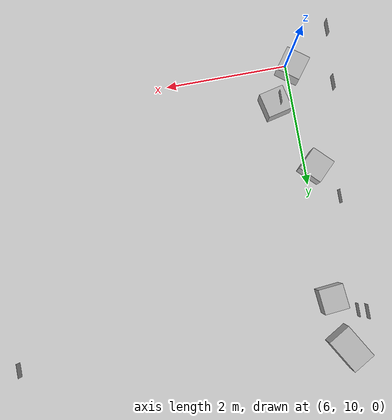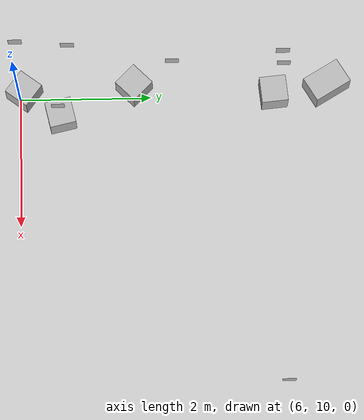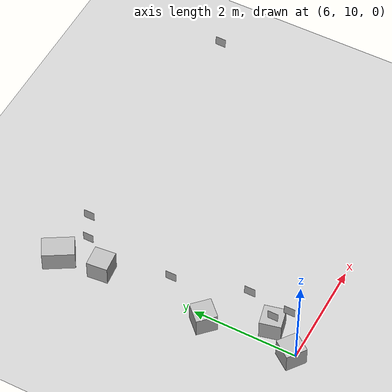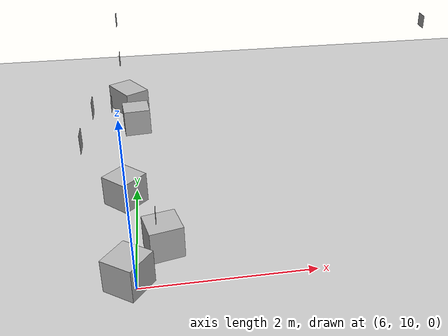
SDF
<sdf version="1.6">
 <world name="default">
  <model name="ground_plane">
   <static>1</static>
   <link name="link">
    <collision name="collision">
     <geometry><plane><normal>0 0 1</normal><size>300 300</size></plane></geometry>
     <surface>
      <contact><collide_bitmask>65535</collide_bitmask></contact>
      <friction><ode><mu>100</mu><mu2>50</mu2></ode></friction>
     </surface>
    </collision>
    <visual name="visual">
     <geometry><plane><normal>0 0 1</normal><size>100 100</size></plane></geometry>
     <material>
      <script><uri>file://media/materials/scripts/gazebo.material</uri><name>Gazebo/Grey</name></script>
     </material>
    </visual>
   </link>
  </model>
  <model name="CuboQR5">
   <link name="link">
    <pose>0 0 0.25 0 -0 0</pose>
    <inertial>
     <mass>0.39</mass>
     <inertia><ixx>0.00058</ixx><ixy>0</ixy><ixz>0</ixz><iyy>0.00058</iyy><iyz>0</iyz><izz>0.00019</izz></inertia>
    </inertial>
    <collision name="collision"><geometry><box><size>0.4 0.4 0.4</size></box></geometry></collision>
    <visual name="visual">
     <geometry><box><size>0.4 0.4 0.4</size></box></geometry>
     <material>
      <script>
       <uri>model://Caja/materials/scripts</uri>
       <uri>model://Caja/materials/textures</uri>
       <name>Caja/Diffuse</name>
      </script>
     </material>
    </visual>
   </link>
   <pose>5.9963 13.8797 -0.050005 -9e-06 -0 0.097104</pose>
  </model>
  <model name="CuboQR6">
   <link name="link">
    <pose>0 0 0.25 0 -0 0</pose>
    <inertial>
     <mass>0.39</mass>
     <inertia><ixx>0.00058</ixx><ixy>0</ixy><ixz>0</ixz><iyy>0.00058</iyy><iyz>0</iyz><izz>0.00019</izz></inertia>
    </inertial>
    <collision name="collision"><geometry><box><size>0.4 0.4 0.4</size></box></geometry></collision>
    <visual name="visual">
     <geometry><box><size>0.4 0.4 0.4</size></box></geometry>
     <material>
      <script>
       <uri>model://Caja/materials/scripts</uri>
       <uri>model://Caja/materials/textures</uri>
       <name>Caja/Diffuse</name>
      </script>
     </material>
    </visual>
   </link>
   <pose>5.85888 11.7464 0.45 3.14158 -0 -0.778734</pose>
  </model>
  <model name="CuboQR9">
   <link name="link">
    <pose>0 0 0.25 0 -0 0</pose>
    <inertial>
     <mass>0.39</mass>
     <inertia><ixx>0.00058</ixx><ixy>0</ixy><ixz>0</ixz><iyy>0.00058</iyy><iyz>0</iyz><izz>0.00019</izz></inertia>
    </inertial>
    <collision name="collision"><geometry><box><size>0.4 0.4 0.4</size></box></geometry></collision>
    <visual name="visual">
     <geometry><box><size>0.4 0.4 0.4</size></box></geometry>
     <material>
      <script>
       <uri>model://Caja/materials/scripts</uri>
       <uri>model://Caja/materials/textures</uri>
       <name>Caja/Diffuse</name>
      </script>
     </material>
    </visual>
   </link>
   <pose>6.25657 10.8656 0.19999 2.19061 1.57079 0.847573</pose>
  </model>
  <model name="CuboQR10">
   <link name="link">
    <pose>0 0 0.25 0 -0 0</pose>
    <inertial>
     <mass>0.39</mass>
     <inertia><ixx>0.00058</ixx><ixy>0</ixy><ixz>0</ixz><iyy>0.00058</iyy><iyz>0</iyz><izz>0.00019</izz></inertia>
    </inertial>
    <collision name="collision"><geometry><box><size>0.4 0.4 0.4</size></box></geometry></collision>
    <visual name="visual">
     <geometry><box><size>0.4 0.4 0.4</size></box></geometry>
     <material>
      <script>
       <uri>model://Caja/materials/scripts</uri>
       <uri>model://Caja/materials/textures</uri>
       <name>Caja/Diffuse</name>
      </script>
     </material>
    </visual>
   </link>
   <pose>5.92451 10.063 0.45 -3.14159 -9e-06 0.9315</pose>
  </model>
  <model name="CuboQR32">
   <link name="link">
    <pose>0 0 0.25 0 -0 0</pose>
    <inertial>
     <mass>0.39</mass>
     <inertia><ixx>0.00058</ixx><ixy>0</ixy><ixz>0</ixz><iyy>0.00058</iyy><iyz>0</iyz><izz>0.00019</izz></inertia>
    </inertial>
    <collision name="collision"><geometry><box><size>0.4 0.6 0.4</size></box></geometry></collision>
    <visual name="visual">
     <geometry><box><size>0.4 0.6 0.4</size></box></geometry>
     <material>
      <script>
       <uri>model://Caja/materials/scripts</uri>
       <uri>model://Caja/materials/textures</uri>
       <name>Caja/Diffuse</name>
      </script>
     </material>
    </visual>
   </link>
   <pose>5.86836 14.6931 -0.05 0 -9e-06 0.537389</pose>
  </model>
  <model name="Plano8">
   <link name="link">
    <gravity>0</gravity>
    <pose>0 0 0.25 0 -0 0</pose>
    <inertial>
     <mass>1e-06</mass>
     <inertia><ixx>0.00058</ixx><ixy>0</ixy><ixz>0</ixz><iyy>0.00058</iyy><iyz>0</iyz><izz>0.00019</izz></inertia>
    </inertial>
    <collision name="collision"><geometry><box><size>0.2 1e-06 0.2</size></box></geometry></collision>
    <visual name="visual">
     <geometry><box><size>0.2 1e-06 0.2</size></box></geometry>
     <material>
      <script>
       <uri>model://Plano8/materials/scripts</uri>
       <uri>model://Plano8/materials/textures</uri>
       <name>Plano8/Diffuse</name>
      </script>
     </material>
     <cast_shadows>0</cast_shadows>
    </visual>
   </link>
   <pose>5.63572 10.0239 1.55665 0 0 -1.57219</pose>
  </model>
  <model name="Plano10">
   <link name="link">
    <gravity>0</gravity>
    <pose>0 0 0.25 0 -0 0</pose>
    <inertial>
     <mass>1e-06</mass>
     <inertia><ixx>0.00058</ixx><ixy>0</ixy><ixz>0</ixz><iyy>0.00058</iyy><iyz>0</iyz><izz>0.00019</izz></inertia>
    </inertial>
    <collision name="collision"><geometry><box><size>0.2 1e-06 0.2</size></box></geometry></collision>
    <visual name="visual">
     <geometry><box><size>0.2 1e-06 0.2</size></box></geometry>
     <material>
      <script>
       <uri>model://Plano10/materials/scripts</uri>
       <uri>model://Plano10/materials/textures</uri>
       <name>Plano10/Diffuse</name>
      </script>
     </material>
     <cast_shadows>0</cast_shadows>
    </visual>
   </link>
   <pose>5.69431 10.7913 1.54976 0 0 -1.57552</pose>
  </model>
  <model name="Plano9">
   <link name="link">
    <gravity>0</gravity>
    <pose>0 0 0.25 0 -0 0</pose>
    <inertial>
     <mass>1e-06</mass>
     <inertia><ixx>0.00058</ixx><ixy>0</ixy><ixz>0</ixz><iyy>0.00058</iyy><iyz>0</iyz><izz>0.00019</izz></inertia>
    </inertial>
    <collision name="collision"><geometry><box><size>0.2 1e-06 0.2</size></box></geometry></collision>
    <visual name="visual">
     <geometry><box><size>0.2 1e-06 0.2</size></box></geometry>
     <material>
      <script>
       <uri>model://Plano9/materials/scripts</uri>
       <uri>model://Plano9/materials/textures</uri>
       <name>Plano9/Diffuse</name>
      </script>
     </material>
     <cast_shadows>0</cast_shadows>
    </visual>
   </link>
   <pose>6.2464 10.5924 0.261153 0 0 -1.57778</pose>
  </model>
  <model name="Plano6">
   <link name="link">
    <gravity>0</gravity>
    <pose>0 -1.44384 0.25 0 -0 0</pose>
    <inertial>
     <mass>1e-06</mass>
     <inertia><ixx>0.00058</ixx><ixy>0</ixy><ixz>0</ixz><iyy>0.00058</iyy><iyz>0</iyz><izz>0.00019</izz></inertia>
    </inertial>
    <visual name="visual">
     <geometry><box><size>0.2 1e-06 0.2</size></box></geometry>
     <material>
      <script>
       <uri>model://Plano6/materials/scripts</uri>
       <uri>model://Plano6/materials/textures</uri>
       <name>Plano6/Diffuse</name>
      </script>
      <shader type="pixel"/>
     </material>
     <cast_shadows>0</cast_shadows>
    </visual>
    <collision name="collision">
     <geometry><box><size>0.2 1e-06 0.2</size></box></geometry>
     <surface>
      <friction>
       <ode><mu>1</mu><mu2>1</mu2><fdir1>0 0 0</fdir1><slip1>0</slip1><slip2>0</slip2></ode>
       <torsional>
        <coefficient>1</coefficient>
        <patch_radius>0</patch_radius>
        <surface_radius>0</surface_radius>
        <use_patch_radius>1</use_patch_radius>
        <ode><slip>0</slip></ode>
       </torsional>
      </friction>
      <bounce><restitution_coefficient>0</restitution_coefficient><threshold>1e+06</threshold></bounce>
      <contact>
       <collide_without_contact>0</collide_without_contact>
       <collide_without_contact_bitmask>1</collide_without_contact_bitmask>
       <collide_bitmask>1</collide_bitmask>
       <ode>
        <soft_cfm>0</soft_cfm>
        <soft_erp>0.2</soft_erp>
        <kp>1e+13</kp>
        <kd>1</kd>
        <max_vel>0.01</max_vel>
        <min_depth>0</min_depth>
       </ode>
       <bullet>
        <split_impulse>1</split_impulse>
        <split_impulse_penetration_threshold>-0.01</split_impulse_penetration_threshold>
        <soft_cfm>0</soft_cfm>
        <soft_erp>0.2</soft_erp>
        <kp>1e+13</kp>
        <kd>1</kd>
       </bullet>
      </contact>
     </surface>
    </collision>
   </link>
   <static>0</static>
   <pose>7.20489 12.3294 0.90104 0 0 -1.57278</pose>
  </model>
  <model name="Plano5">
   <link name="link">
    <gravity>0</gravity>
    <pose>-0 -1.39268 0.25 0 -0 0</pose>
    <inertial>
     <mass>1e-06</mass>
     <inertia><ixx>0.00058</ixx><ixy>0</ixy><ixz>0</ixz><iyy>0.00058</iyy><iyz>0</iyz><izz>0.00019</izz></inertia>
    </inertial>
    <visual name="visual">
     <geometry><box><size>0.2 1e-06 0.2</size></box></geometry>
     <material>
      <script>
       <uri>model://Plano5/materials/scripts</uri>
       <uri>model://Plano5/materials/textures</uri>
       <name>Plano5/Diffuse</name>
      </script>
      <shader type="pixel"/>
     </material>
     <cast_shadows>0</cast_shadows>
    </visual>
    <collision name="collision">
     <geometry><box><size>0.2 1e-06 0.2</size></box></geometry>
     <surface>
      <friction>
       <ode><mu>1</mu><mu2>1</mu2><fdir1>0 0 0</fdir1><slip1>0</slip1><slip2>0</slip2></ode>
       <torsional>
        <coefficient>1</coefficient>
        <patch_radius>0</patch_radius>
        <surface_radius>0</surface_radius>
        <use_patch_radius>1</use_patch_radius>
        <ode><slip>0</slip></ode>
       </torsional>
      </friction>
      <bounce><restitution_coefficient>0</restitution_coefficient><threshold>1e+06</threshold></bounce>
      <contact>
       <collide_without_contact>0</collide_without_contact>
       <collide_without_contact_bitmask>1</collide_without_contact_bitmask>
       <collide_bitmask>1</collide_bitmask>
       <ode>
        <soft_cfm>0</soft_cfm>
        <soft_erp>0.2</soft_erp>
        <kp>1e+13</kp>
        <kd>1</kd>
        <max_vel>0.01</max_vel>
        <min_depth>0</min_depth>
       </ode>
       <bullet>
        <split_impulse>1</split_impulse>
        <split_impulse_penetration_threshold>-0.01</split_impulse_penetration_threshold>
        <soft_cfm>0</soft_cfm>
        <soft_erp>0.2</soft_erp>
        <kp>1e+13</kp>
        <kd>1</kd>
       </bullet>
      </contact>
     </surface>
    </collision>
   </link>
   <static>0</static>
   <pose>7.21227 13.9906 0.90178 0 0 -1.58032</pose>
  </model>
  <model name="Plano32">
   <link name="link">
    <gravity>0</gravity>
    <pose>0 -1.41938 0.25 0 -0 0</pose>
    <inertial>
     <mass>1e-06</mass>
     <inertia><ixx>0.00058</ixx><ixy>0</ixy><ixz>0</ixz><iyy>0.00058</iyy><iyz>0</iyz><izz>0.00019</izz></inertia>
    </inertial>
    <visual name="visual">
     <geometry><box><size>0.2 1e-06 0.2</size></box></geometry>
     <material>
      <script>
       <uri>model://Plano32/materials/scripts</uri>
       <uri>model://Plano32/materials/textures</uri>
       <name>Plano32/Diffuse</name>
      </script>
      <shader type="pixel"/>
     </material>
     <cast_shadows>0</cast_shadows>
    </visual>
    <collision name="collision">
     <geometry><box><size>0.2 1e-06 0.2</size></box></geometry>
     <surface>
      <friction>
       <ode><mu>1</mu><mu2>1</mu2><fdir1>0 0 0</fdir1><slip1>0</slip1><slip2>0</slip2></ode>
       <torsional>
        <coefficient>1</coefficient>
        <patch_radius>0</patch_radius>
        <surface_radius>0</surface_radius>
        <use_patch_radius>1</use_patch_radius>
        <ode><slip>0</slip></ode>
       </torsional>
      </friction>
      <bounce><restitution_coefficient>0</restitution_coefficient><threshold>1e+06</threshold></bounce>
      <contact>
       <collide_without_contact>0</collide_without_contact>
       <collide_without_contact_bitmask>1</collide_without_contact_bitmask>
       <collide_bitmask>1</collide_bitmask>
       <ode>
        <soft_cfm>0</soft_cfm>
        <soft_erp>0.2</soft_erp>
        <kp>1e+13</kp>
        <kd>1</kd>
        <max_vel>0.01</max_vel>
        <min_depth>0</min_depth>
       </ode>
       <bullet>
        <split_impulse>1</split_impulse>
        <split_impulse_penetration_threshold>-0.01</split_impulse_penetration_threshold>
        <soft_cfm>0</soft_cfm>
        <soft_erp>0.2</soft_erp>
        <kp>1e+13</kp>
        <kd>1</kd>
       </bullet>
      </contact>
     </surface>
    </collision>
   </link>
   <static>0</static>
   <pose>7.25006 13.9474 1.55071 0 0 -1.5803</pose>
  </model>
  <model name="Plano17">
   <link name="link">
    <gravity>0</gravity>
    <pose>0.026805 0.021016 0.653193 -0 0.041367 0.025601</pose>
    <inertial>
     <mass>1e-06</mass>
     <inertia><ixx>0.00058</ixx><ixy>0</ixy><ixz>0</ixz><iyy>0.00058</iyy><iyz>0</iyz><izz>0.00019</izz></inertia>
    </inertial>
    <visual name="visual">
     <geometry><box><size>0.2 1e-06 0.2</size></box></geometry>
     <material>
      <script>
       <uri>model://Plano17/materials/scripts</uri>
       <uri>model://Plano17/materials/textures</uri>
       <name>Plano17/Diffuse</name>
      </script>
      <shader type="pixel"/>
     </material>
     <cast_shadows>0</cast_shadows>
    </visual>
    <collision name="collision">
     <geometry><box><size>0.2 1e-06 0.2</size></box></geometry>
     <surface>
      <friction>
       <ode><mu>1</mu><mu2>1</mu2><fdir1>0 0 0</fdir1><slip1>0</slip1><slip2>0</slip2></ode>
       <torsional>
        <coefficient>1</coefficient>
        <patch_radius>0</patch_radius>
        <surface_radius>0</surface_radius>
        <use_patch_radius>1</use_patch_radius>
        <ode><slip>0</slip></ode>
       </torsional>
      </friction>
      <bounce><restitution_coefficient>0</restitution_coefficient><threshold>1e+06</threshold></bounce>
      <contact>
       <collide_without_contact>0</collide_without_contact>
       <collide_without_contact_bitmask>1</collide_without_contact_bitmask>
       <collide_bitmask>1</collide_bitmask>
       <ode>
        <soft_cfm>0</soft_cfm>
        <soft_erp>0.2</soft_erp>
        <kp>1e+13</kp>
        <kd>1</kd>
        <max_vel>0.01</max_vel>
        <min_depth>0</min_depth>
       </ode>
       <bullet>
        <split_impulse>1</split_impulse>
        <split_impulse_penetration_threshold>-0.01</split_impulse_penetration_threshold>
        <soft_cfm>0</soft_cfm>
        <soft_erp>0.2</soft_erp>
        <kp>1e+13</kp>
        <kd>1</kd>
       </bullet>
      </contact>
     </surface>
    </collision>
   </link>
   <static>0</static>
   <pose>10.6508 13.9613 0.90351 -0 -0 -1.5876</pose>
  </model>
 </world>
</sdf>
